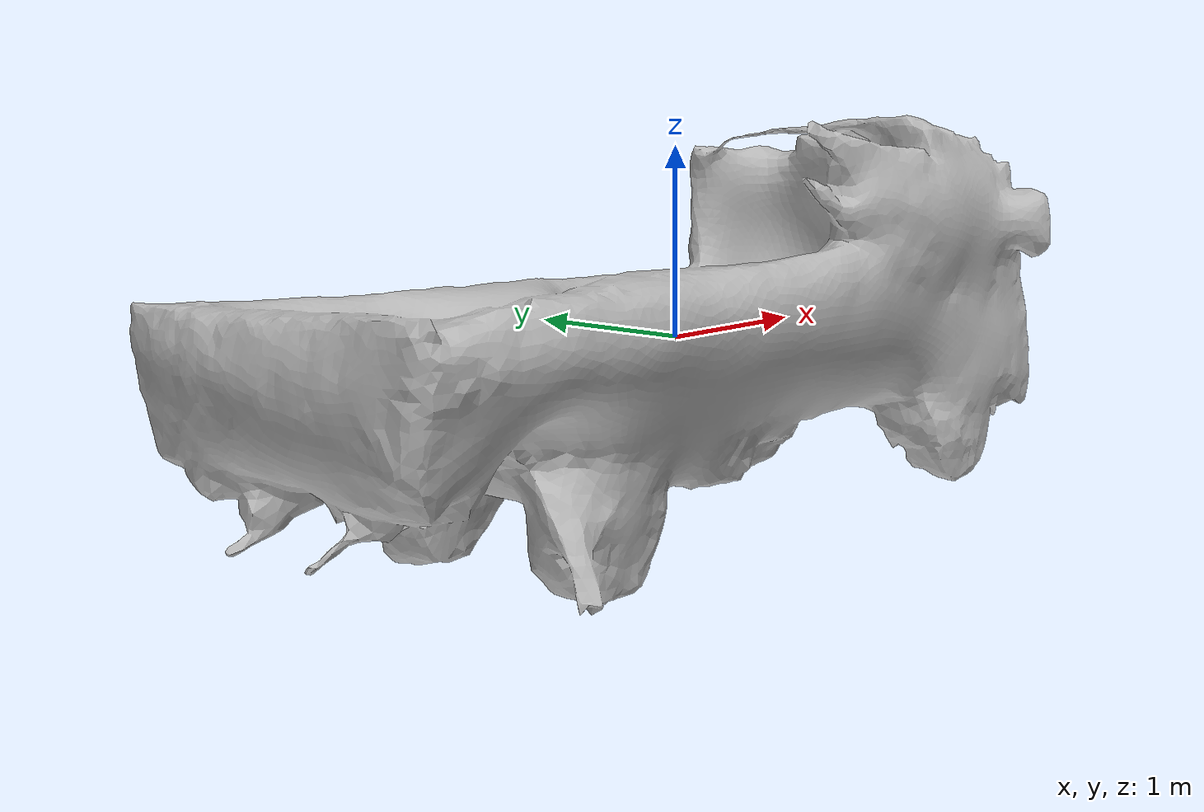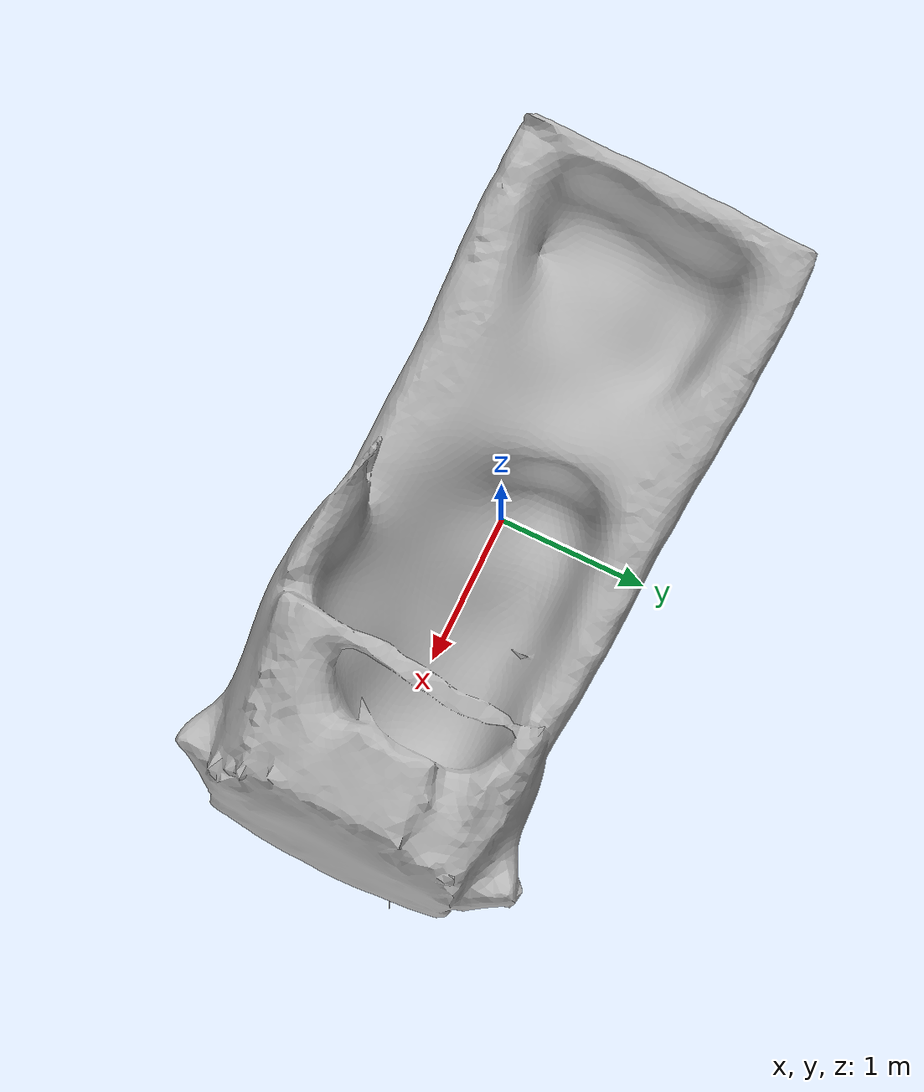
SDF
<?xml version='1.0'?>
<sdf version='1.7'>
  <model name='kare-lorry4'>
    <model name='kare-lorry3'>
      <model name='kare-lorry2'>
        <model name='kare-emptylorry'>
          <static>1</static>
          <link name='link'>
            <collision name='collision'>
              <geometry>
                <mesh>
                  <scale>5 5 5</scale>
                  <uri>/home/amadeus/model_editor_models/kare-emptylorry/meshes/kare-emptylorry.obj</uri>
                </mesh>
              </geometry>
            </collision>
            <visual name='visual'>
              <geometry>
                <mesh>
                  <scale>5 5 5</scale>
                  <uri>/home/amadeus/model_editor_models/kare-emptylorry/meshes/kare-emptylorry.obj</uri>
                </mesh>
              </geometry>
            </visual>
          </link>
          <pose>-2.6e-05 -2.7e-05 -2e-06 1.55178 -0.050932 -1.58567</pose>
        </model>
        <static>0</static>
        <allow_auto_disable>1</allow_auto_disable>
        <pose>1e-06 -0 2e-06 0 -0 0</pose>
      </model>
      <static>1</static>
      <allow_auto_disable>0</allow_auto_disable>
      <pose>3.8e-05 0 -1e-06 0 -0 0</pose>
    </model>
    <static>0</static>
    <allow_auto_disable>1</allow_auto_disable>
  </model>
</sdf>
